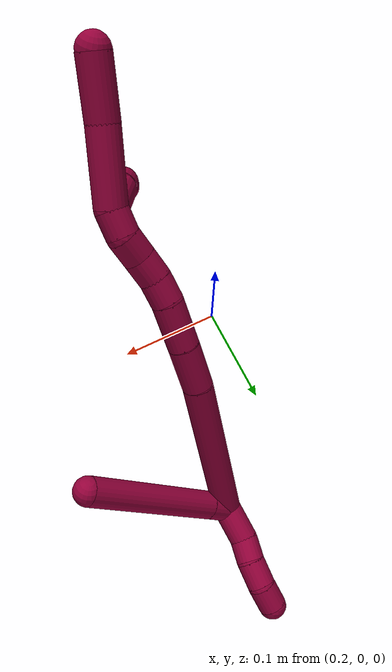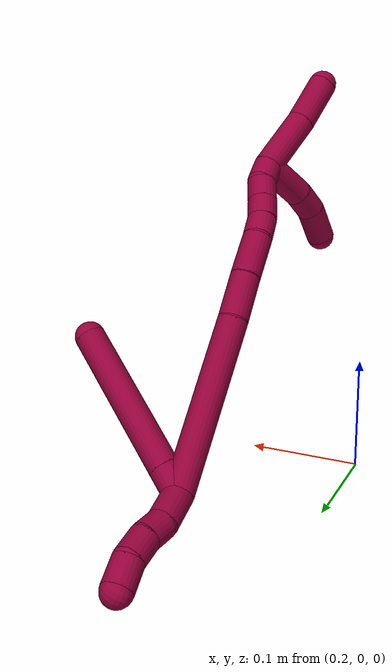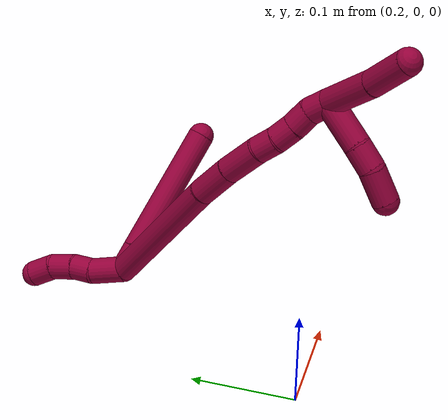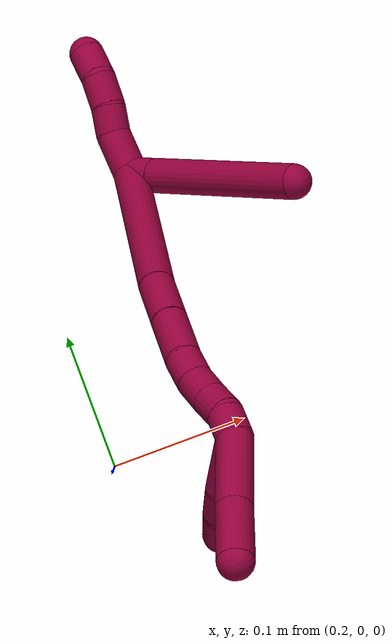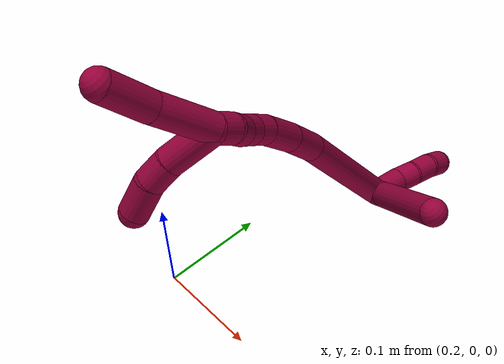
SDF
<sdf version="1.7">
 <world name="default">
  <model name="8">
   <static>0</static>
   <link name="8">
    <collision name="collision-cylinder-e_1_2_8">
     <pose>-0.009931 0.004021 -0.004603 -2.42352 -1.0191 1.9587</pose>
     <geometry><cylinder><radius>0.0125</radius><length>0.023322</length></cylinder></geometry>
     <surface>
      <friction><ode><mu>1.16</mu><mu2>1.16</mu2><slip1>0</slip1><slip2>0</slip2></ode></friction>
      <contact><ode><kp>1e+06</kp><kd>1</kd><max_vel>0</max_vel><min_depth>0.001</min_depth></ode></contact>
     </surface>
    </collision>
    <visual name="visual-cylinder-e_1_2_8">
     <pose>-0.009931 0.004021 -0.004603 -2.42352 -1.0191 1.9587</pose>
     <geometry><cylinder><radius>0.0125</radius><length>0.023322</length></cylinder></geometry>
     <material><ambient>0.584314 0 0.227451 1</ambient></material>
    </visual>
    <collision name="collision-cylinder-e_2_8_6">
     <pose>-0.074116 0.029607 -0.033768 -2.42109 -1.02857 1.96553</pose>
     <geometry><cylinder><radius>0.0125</radius><length>0.126678</length></cylinder></geometry>
     <surface>
      <friction><ode><mu>1.16</mu><mu2>1.16</mu2><slip1>0</slip1><slip2>0</slip2></ode></friction>
      <contact><ode><kp>1e+06</kp><kd>1</kd><max_vel>0</max_vel><min_depth>0.001</min_depth></ode></contact>
     </surface>
    </collision>
    <visual name="visual-cylinder-e_2_8_6">
     <pose>-0.074116 0.029607 -0.033768 -2.42109 -1.02857 1.96553</pose>
     <geometry><cylinder><radius>0.0125</radius><length>0.126678</length></cylinder></geometry>
     <material><ambient>0.584314 0 0.227451 1</ambient></material>
    </visual>
    <collision name="collision-cylinder-e_1_2_9">
     <pose>0.010117 0.01 0.008142 -0.887467 0.665239 -0.325518</pose>
     <geometry><cylinder><radius>0.0125</radius><length>0.032781</length></cylinder></geometry>
     <surface>
      <friction><ode><mu>1.16</mu><mu2>1.16</mu2><slip1>0</slip1><slip2>0</slip2></ode></friction>
      <contact><ode><kp>1e+06</kp><kd>1</kd><max_vel>0</max_vel><min_depth>0.001</min_depth></ode></contact>
     </surface>
    </collision>
    <visual name="visual-cylinder-e_1_2_9">
     <pose>0.010117 0.01 0.008142 -0.887467 0.665239 -0.325518</pose>
     <geometry><cylinder><radius>0.0125</radius><length>0.032781</length></cylinder></geometry>
     <material><ambient>0.584314 0 0.227451 1</ambient></material>
    </visual>
    <collision name="collision-cylinder-e_2_9_10">
     <pose>0.024447 0.028097 0.020827 -1.05951 0.426006 -0.251966</pose>
     <geometry><cylinder><radius>0.0125</radius><length>0.020391</length></cylinder></geometry>
     <surface>
      <friction><ode><mu>1.16</mu><mu2>1.16</mu2><slip1>0</slip1><slip2>0</slip2></ode></friction>
      <contact><ode><kp>1e+06</kp><kd>1</kd><max_vel>0</max_vel><min_depth>0.001</min_depth></ode></contact>
     </surface>
    </collision>
    <visual name="visual-cylinder-e_2_9_10">
     <pose>0.024447 0.028097 0.020827 -1.05951 0.426006 -0.251966</pose>
     <geometry><cylinder><radius>0.0125</radius><length>0.020391</length></cylinder></geometry>
     <material><ambient>0.584314 0 0.227451 1</ambient></material>
    </visual>
    <collision name="collision-cylinder-e_3_10_11">
     <pose>0.035135 0.043984 0.031372 -0.914213 0.582254 -0.29265</pose>
     <geometry><cylinder><radius>0.0125</radius><length>0.023548</length></cylinder></geometry>
     <surface>
      <friction><ode><mu>1.16</mu><mu2>1.16</mu2><slip1>0</slip1><slip2>0</slip2></ode></friction>
      <contact><ode><kp>1e+06</kp><kd>1</kd><max_vel>0</max_vel><min_depth>0.001</min_depth></ode></contact>
     </surface>
    </collision>
    <visual name="visual-cylinder-e_3_10_11">
     <pose>0.035135 0.043984 0.031372 -0.914213 0.582254 -0.29265</pose>
     <geometry><cylinder><radius>0.0125</radius><length>0.023548</length></cylinder></geometry>
     <material><ambient>0.584314 0 0.227451 1</ambient></material>
    </visual>
    <collision name="collision-cylinder-e_4_11_5">
     <pose>0.048896 0.05645 0.045154 -0.541335 0.676438 -0.19458</pose>
     <geometry><cylinder><radius>0.0125</radius><length>0.02328</length></cylinder></geometry>
     <surface>
      <friction><ode><mu>1.16</mu><mu2>1.16</mu2><slip1>0</slip1><slip2>0</slip2></ode></friction>
      <contact><ode><kp>1e+06</kp><kd>1</kd><max_vel>0</max_vel><min_depth>0.001</min_depth></ode></contact>
     </surface>
    </collision>
    <visual name="visual-cylinder-e_4_11_5">
     <pose>0.048896 0.05645 0.045154 -0.541335 0.676438 -0.19458</pose>
     <geometry><cylinder><radius>0.0125</radius><length>0.02328</length></cylinder></geometry>
     <material><ambient>0.584314 0 0.227451 1</ambient></material>
    </visual>
    <collision name="collision-cylinder-e_1_2_12">
     <pose>-0.029011 -0.006763 -0.065075 3.03804 -0.41737 -2.66161</pose>
     <geometry><cylinder><radius>0.0125</radius><length>0.143138</length></cylinder></geometry>
     <surface>
      <friction><ode><mu>1.16</mu><mu2>1.16</mu2><slip1>0</slip1><slip2>0</slip2></ode></friction>
      <contact><ode><kp>1e+06</kp><kd>1</kd><max_vel>0</max_vel><min_depth>0.001</min_depth></ode></contact>
     </surface>
    </collision>
    <visual name="visual-cylinder-e_1_2_12">
     <pose>-0.029011 -0.006763 -0.065075 3.03804 -0.41737 -2.66161</pose>
     <geometry><cylinder><radius>0.0125</radius><length>0.143138</length></cylinder></geometry>
     <material><ambient>0.584314 0 0.227451 1</ambient></material>
    </visual>
    <collision name="collision-cylinder-e_2_12_13">
     <pose>-0.067442 -0.016381 -0.14668 2.97056 -0.511686 -2.50818</pose>
     <geometry><cylinder><radius>0.0125</radius><length>0.038477</length></cylinder></geometry>
     <surface>
      <friction><ode><mu>1.16</mu><mu2>1.16</mu2><slip1>0</slip1><slip2>0</slip2></ode></friction>
      <contact><ode><kp>1e+06</kp><kd>1</kd><max_vel>0</max_vel><min_depth>0.001</min_depth></ode></contact>
     </surface>
    </collision>
    <visual name="visual-cylinder-e_2_12_13">
     <pose>-0.067442 -0.016381 -0.14668 2.97056 -0.511686 -2.50818</pose>
     <geometry><cylinder><radius>0.0125</radius><length>0.038477</length></cylinder></geometry>
     <material><ambient>0.584314 0 0.227451 1</ambient></material>
    </visual>
    <collision name="collision-cylinder-e_3_13_14">
     <pose>-0.086623 -0.023206 -0.179143 2.89737 -0.536313 -2.3015</pose>
     <geometry><cylinder><radius>0.0125</radius><length>0.038206</length></cylinder></geometry>
     <surface>
      <friction><ode><mu>1.16</mu><mu2>1.16</mu2><slip1>0</slip1><slip2>0</slip2></ode></friction>
      <contact><ode><kp>1e+06</kp><kd>1</kd><max_vel>0</max_vel><min_depth>0.001</min_depth></ode></contact>
     </surface>
    </collision>
    <visual name="visual-cylinder-e_3_13_14">
     <pose>-0.086623 -0.023206 -0.179143 2.89737 -0.536313 -2.3015</pose>
     <geometry><cylinder><radius>0.0125</radius><length>0.038206</length></cylinder></geometry>
     <material><ambient>0.584314 0 0.227451 1</ambient></material>
    </visual>
    <collision name="collision-cylinder-e_4_14_15">
     <pose>-0.10268 -0.029971 -0.202442 2.77901 -0.674251 -2.17788</pose>
     <geometry><cylinder><radius>0.0125</radius><length>0.020168</length></cylinder></geometry>
     <surface>
      <friction><ode><mu>1.16</mu><mu2>1.16</mu2><slip1>0</slip1><slip2>0</slip2></ode></friction>
      <contact><ode><kp>1e+06</kp><kd>1</kd><max_vel>0</max_vel><min_depth>0.001</min_depth></ode></contact>
     </surface>
    </collision>
    <visual name="visual-cylinder-e_4_14_15">
     <pose>-0.10268 -0.029971 -0.202442 2.77901 -0.674251 -2.17788</pose>
     <geometry><cylinder><radius>0.0125</radius><length>0.020168</length></cylinder></geometry>
     <material><ambient>0.584314 0 0.227451 1</ambient></material>
    </visual>
    <collision name="collision-cylinder-e_5_15_16">
     <pose>-0.116206 -0.034144 -0.21658 2.9407 -0.807901 -2.6785</pose>
     <geometry><cylinder><radius>0.0125</radius><length>0.020004</length></cylinder></geometry>
     <surface>
      <friction><ode><mu>1.16</mu><mu2>1.16</mu2><slip1>0</slip1><slip2>0</slip2></ode></friction>
      <contact><ode><kp>1e+06</kp><kd>1</kd><max_vel>0</max_vel><min_depth>0.001</min_depth></ode></contact>
     </surface>
    </collision>
    <visual name="visual-cylinder-e_5_15_16">
     <pose>-0.116206 -0.034144 -0.21658 2.9407 -0.807901 -2.6785</pose>
     <geometry><cylinder><radius>0.0125</radius><length>0.020004</length></cylinder></geometry>
     <material><ambient>0.584314 0 0.227451 1</ambient></material>
    </visual>
    <collision name="collision-cylinder-e_6_16_17">
     <pose>-0.130418 -0.035714 -0.230512 3.11495 -0.772652 -3.07612</pose>
     <geometry><cylinder><radius>0.0125</radius><length>0.020004</length></cylinder></geometry>
     <surface>
      <friction><ode><mu>1.16</mu><mu2>1.16</mu2><slip1>0</slip1><slip2>0</slip2></ode></friction>
      <contact><ode><kp>1e+06</kp><kd>1</kd><max_vel>0</max_vel><min_depth>0.001</min_depth></ode></contact>
     </surface>
    </collision>
    <visual name="visual-cylinder-e_6_16_17">
     <pose>-0.130418 -0.035714 -0.230512 3.11495 -0.772652 -3.07612</pose>
     <geometry><cylinder><radius>0.0125</radius><length>0.020004</length></cylinder></geometry>
     <material><ambient>0.584314 0 0.227451 1</ambient></material>
    </visual>
    <collision name="collision-cylinder-e_7_17_1">
     <pose>-0.143085 -0.039299 -0.245167 2.71634 -0.604681 -1.93069</pose>
     <geometry><cylinder><radius>0.0125</radius><length>0.020002</length></cylinder></geometry>
     <surface>
      <friction><ode><mu>1.16</mu><mu2>1.16</mu2><slip1>0</slip1><slip2>0</slip2></ode></friction>
      <contact><ode><kp>1e+06</kp><kd>1</kd><max_vel>0</max_vel><min_depth>0.001</min_depth></ode></contact>
     </surface>
    </collision>
    <visual name="visual-cylinder-e_7_17_1">
     <pose>-0.143085 -0.039299 -0.245167 2.71634 -0.604681 -1.93069</pose>
     <geometry><cylinder><radius>0.0125</radius><length>0.020002</length></cylinder></geometry>
     <material><ambient>0.584314 0 0.227451 1</ambient></material>
    </visual>
    <collision name="collision-cylinder-e_1_1_18">
     <pose>-0.156271 -0.052885 -0.277462 2.75168 -0.272773 -1.21473</pose>
     <geometry><cylinder><radius>0.0125</radius><length>0.055685</length></cylinder></geometry>
     <surface>
      <friction><ode><mu>1.16</mu><mu2>1.16</mu2><slip1>0</slip1><slip2>0</slip2></ode></friction>
      <contact><ode><kp>1e+06</kp><kd>1</kd><max_vel>0</max_vel><min_depth>0.001</min_depth></ode></contact>
     </surface>
    </collision>
    <visual name="visual-cylinder-e_1_1_18">
     <pose>-0.156271 -0.052885 -0.277462 2.75168 -0.272773 -1.21473</pose>
     <geometry><cylinder><radius>0.0125</radius><length>0.055685</length></cylinder></geometry>
     <material><ambient>0.584314 0 0.227451 1</ambient></material>
    </visual>
    <collision name="collision-cylinder-e_2_18_4">
     <pose>-0.170333 -0.069154 -0.322535 2.85038 -0.300601 -1.60298</pose>
     <geometry><cylinder><radius>0.0125</radius><length>0.044315</length></cylinder></geometry>
     <surface>
      <friction><ode><mu>1.16</mu><mu2>1.16</mu2><slip1>0</slip1><slip2>0</slip2></ode></friction>
      <contact><ode><kp>1e+06</kp><kd>1</kd><max_vel>0</max_vel><min_depth>0.001</min_depth></ode></contact>
     </surface>
    </collision>
    <visual name="visual-cylinder-e_2_18_4">
     <pose>-0.170333 -0.069154 -0.322535 2.85038 -0.300601 -1.60298</pose>
     <geometry><cylinder><radius>0.0125</radius><length>0.044315</length></cylinder></geometry>
     <material><ambient>0.584314 0 0.227451 1</ambient></material>
    </visual>
    <collision name="collision-cylinder-e_1_1_19">
     <pose>-0.147019 -0.064651 -0.249226 1.41559 0.078635 0.067298</pose>
     <geometry><cylinder><radius>0.0125</radius><length>0.044586</length></cylinder></geometry>
     <surface>
      <friction><ode><mu>1.16</mu><mu2>1.16</mu2><slip1>0</slip1><slip2>0</slip2></ode></friction>
      <contact><ode><kp>1e+06</kp><kd>1</kd><max_vel>0</max_vel><min_depth>0.001</min_depth></ode></contact>
     </surface>
    </collision>
    <visual name="visual-cylinder-e_1_1_19">
     <pose>-0.147019 -0.064651 -0.249226 1.41559 0.078635 0.067298</pose>
     <geometry><cylinder><radius>0.0125</radius><length>0.044586</length></cylinder></geometry>
     <material><ambient>0.584314 0 0.227451 1</ambient></material>
    </visual>
    <collision name="collision-cylinder-e_2_19_20">
     <pose>-0.144893 -0.09788 -0.242347 1.27434 0.031834 0.023563</pose>
     <geometry><cylinder><radius>0.0125</radius><length>0.023584</length></cylinder></geometry>
     <surface>
      <friction><ode><mu>1.16</mu><mu2>1.16</mu2><slip1>0</slip1><slip2>0</slip2></ode></friction>
      <contact><ode><kp>1e+06</kp><kd>1</kd><max_vel>0</max_vel><min_depth>0.001</min_depth></ode></contact>
     </surface>
    </collision>
    <visual name="visual-cylinder-e_2_19_20">
     <pose>-0.144893 -0.09788 -0.242347 1.27434 0.031834 0.023563</pose>
     <geometry><cylinder><radius>0.0125</radius><length>0.023584</length></cylinder></geometry>
     <material><ambient>0.584314 0 0.227451 1</ambient></material>
    </visual>
    <collision name="collision-cylinder-e_3_20_3">
     <pose>-0.14378 -0.122597 -0.230421 1.00794 0.046367 0.025573</pose>
     <geometry><cylinder><radius>0.0125</radius><length>0.03183</length></cylinder></geometry>
     <surface>
      <friction><ode><mu>1.16</mu><mu2>1.16</mu2><slip1>0</slip1><slip2>0</slip2></ode></friction>
      <contact><ode><kp>1e+06</kp><kd>1</kd><max_vel>0</max_vel><min_depth>0.001</min_depth></ode></contact>
     </surface>
    </collision>
    <visual name="visual-cylinder-e_3_20_3">
     <pose>-0.14378 -0.122597 -0.230421 1.00794 0.046367 0.025573</pose>
     <geometry><cylinder><radius>0.0125</radius><length>0.03183</length></cylinder></geometry>
     <material><ambient>0.584314 0 0.227451 1</ambient></material>
    </visual>
    <collision name="collision-sphere-3">
     <pose>-0.143042 -0.136042 -0.221938 0 -0 0</pose>
     <geometry><sphere><radius>0.0125</radius></sphere></geometry>
     <surface>
      <friction><ode><mu>1.16</mu><mu2>1.16</mu2><slip1>0</slip1><slip2>0</slip2></ode></friction>
      <contact><ode><kp>1e+06</kp><kd>1</kd><max_vel>0</max_vel><min_depth>0.001</min_depth></ode></contact>
     </surface>
    </collision>
    <visual name="visual-sphere-3">
     <pose>-0.143042 -0.136042 -0.221938 0 -0 0</pose>
     <geometry><sphere><radius>0.0125</radius></sphere></geometry>
     <material><ambient>0.584314 0 0.227451 1</ambient></material>
    </visual>
    <collision name="collision-sphere-20">
     <pose>-0.144517 -0.109151 -0.238904 0 -0 0</pose>
     <geometry><sphere><radius>0.0125</radius></sphere></geometry>
     <surface>
      <friction><ode><mu>1.16</mu><mu2>1.16</mu2><slip1>0</slip1><slip2>0</slip2></ode></friction>
      <contact><ode><kp>1e+06</kp><kd>1</kd><max_vel>0</max_vel><min_depth>0.001</min_depth></ode></contact>
     </surface>
    </collision>
    <visual name="visual-sphere-20">
     <pose>-0.144517 -0.109151 -0.238904 0 -0 0</pose>
     <geometry><sphere><radius>0.0125</radius></sphere></geometry>
     <material><ambient>0.584314 0 0.227451 1</ambient></material>
    </visual>
    <collision name="collision-sphere-19">
     <pose>-0.145268 -0.086608 -0.24579 0 -0 0</pose>
     <geometry><sphere><radius>0.0125</radius></sphere></geometry>
     <surface>
      <friction><ode><mu>1.16</mu><mu2>1.16</mu2><slip1>0</slip1><slip2>0</slip2></ode></friction>
      <contact><ode><kp>1e+06</kp><kd>1</kd><max_vel>0</max_vel><min_depth>0.001</min_depth></ode></contact>
     </surface>
    </collision>
    <visual name="visual-sphere-19">
     <pose>-0.145268 -0.086608 -0.24579 0 -0 0</pose>
     <geometry><sphere><radius>0.0125</radius></sphere></geometry>
     <material><ambient>0.584314 0 0.227451 1</ambient></material>
    </visual>
    <collision name="collision-sphere-11">
     <pose>0.041609 0.051773 0.037375 0 -0 0</pose>
     <geometry><sphere><radius>0.0125</radius></sphere></geometry>
     <surface>
      <friction><ode><mu>1.16</mu><mu2>1.16</mu2><slip1>0</slip1><slip2>0</slip2></ode></friction>
      <contact><ode><kp>1e+06</kp><kd>1</kd><max_vel>0</max_vel><min_depth>0.001</min_depth></ode></contact>
     </surface>
    </collision>
    <visual name="visual-sphere-11">
     <pose>0.041609 0.051773 0.037375 0 -0 0</pose>
     <geometry><sphere><radius>0.0125</radius></sphere></geometry>
     <material><ambient>0.584314 0 0.227451 1</ambient></material>
    </visual>
    <collision name="collision-sphere-10">
     <pose>0.02866 0.036194 0.025369 0 -0 0</pose>
     <geometry><sphere><radius>0.0125</radius></sphere></geometry>
     <surface>
      <friction><ode><mu>1.16</mu><mu2>1.16</mu2><slip1>0</slip1><slip2>0</slip2></ode></friction>
      <contact><ode><kp>1e+06</kp><kd>1</kd><max_vel>0</max_vel><min_depth>0.001</min_depth></ode></contact>
     </surface>
    </collision>
    <visual name="visual-sphere-10">
     <pose>0.02866 0.036194 0.025369 0 -0 0</pose>
     <geometry><sphere><radius>0.0125</radius></sphere></geometry>
     <material><ambient>0.584314 0 0.227451 1</ambient></material>
    </visual>
    <collision name="collision-sphere-6">
     <pose>-0.128369 0.051172 -0.058331 0 -0 0</pose>
     <geometry><sphere><radius>0.0125</radius></sphere></geometry>
     <surface>
      <friction><ode><mu>1.16</mu><mu2>1.16</mu2><slip1>0</slip1><slip2>0</slip2></ode></friction>
      <contact><ode><kp>1e+06</kp><kd>1</kd><max_vel>0</max_vel><min_depth>0.001</min_depth></ode></contact>
     </surface>
    </collision>
    <visual name="visual-sphere-6">
     <pose>-0.128369 0.051172 -0.058331 0 -0 0</pose>
     <geometry><sphere><radius>0.0125</radius></sphere></geometry>
     <material><ambient>0.584314 0 0.227451 1</ambient></material>
    </visual>
    <collision name="collision-sphere-9">
     <pose>0.020234 0.02 0.016284 0 -0 0</pose>
     <geometry><sphere><radius>0.0125</radius></sphere></geometry>
     <surface>
      <friction><ode><mu>1.16</mu><mu2>1.16</mu2><slip1>0</slip1><slip2>0</slip2></ode></friction>
      <contact><ode><kp>1e+06</kp><kd>1</kd><max_vel>0</max_vel><min_depth>0.001</min_depth></ode></contact>
     </surface>
    </collision>
    <visual name="visual-sphere-9">
     <pose>0.020234 0.02 0.016284 0 -0 0</pose>
     <geometry><sphere><radius>0.0125</radius></sphere></geometry>
     <material><ambient>0.584314 0 0.227451 1</ambient></material>
    </visual>
    <collision name="collision-sphere-2">
     <geometry><sphere><radius>0.0125</radius></sphere></geometry>
     <surface>
      <friction><ode><mu>1.16</mu><mu2>1.16</mu2><slip1>0</slip1><slip2>0</slip2></ode></friction>
      <contact><ode><kp>1e+06</kp><kd>1</kd><max_vel>0</max_vel><min_depth>0.001</min_depth></ode></contact>
     </surface>
    </collision>
    <visual name="visual-sphere-2">
     <geometry><sphere><radius>0.0125</radius></sphere></geometry>
     <material><ambient>0.584314 0 0.227451 1</ambient></material>
    </visual>
    <collision name="collision-sphere-8">
     <pose>-0.019862 0.008042 -0.009206 0 -0 0</pose>
     <geometry><sphere><radius>0.0125</radius></sphere></geometry>
     <surface>
      <friction><ode><mu>1.16</mu><mu2>1.16</mu2><slip1>0</slip1><slip2>0</slip2></ode></friction>
      <contact><ode><kp>1e+06</kp><kd>1</kd><max_vel>0</max_vel><min_depth>0.001</min_depth></ode></contact>
     </surface>
    </collision>
    <visual name="visual-sphere-8">
     <pose>-0.019862 0.008042 -0.009206 0 -0 0</pose>
     <geometry><sphere><radius>0.0125</radius></sphere></geometry>
     <material><ambient>0.584314 0 0.227451 1</ambient></material>
    </visual>
    <collision name="collision-sphere-5">
     <pose>0.056183 0.061127 0.052933 0 -0 0</pose>
     <geometry><sphere><radius>0.0125</radius></sphere></geometry>
     <surface>
      <friction><ode><mu>1.16</mu><mu2>1.16</mu2><slip1>0</slip1><slip2>0</slip2></ode></friction>
      <contact><ode><kp>1e+06</kp><kd>1</kd><max_vel>0</max_vel><min_depth>0.001</min_depth></ode></contact>
     </surface>
    </collision>
    <visual name="visual-sphere-5">
     <pose>0.056183 0.061127 0.052933 0 -0 0</pose>
     <geometry><sphere><radius>0.0125</radius></sphere></geometry>
     <material><ambient>0.584314 0 0.227451 1</ambient></material>
    </visual>
    <collision name="collision-sphere-12">
     <pose>-0.058022 -0.013525 -0.13015 0 -0 0</pose>
     <geometry><sphere><radius>0.0125</radius></sphere></geometry>
     <surface>
      <friction><ode><mu>1.16</mu><mu2>1.16</mu2><slip1>0</slip1><slip2>0</slip2></ode></friction>
      <contact><ode><kp>1e+06</kp><kd>1</kd><max_vel>0</max_vel><min_depth>0.001</min_depth></ode></contact>
     </surface>
    </collision>
    <visual name="visual-sphere-12">
     <pose>-0.058022 -0.013525 -0.13015 0 -0 0</pose>
     <geometry><sphere><radius>0.0125</radius></sphere></geometry>
     <material><ambient>0.584314 0 0.227451 1</ambient></material>
    </visual>
    <collision name="collision-sphere-13">
     <pose>-0.076862 -0.019236 -0.163209 0 -0 0</pose>
     <geometry><sphere><radius>0.0125</radius></sphere></geometry>
     <surface>
      <friction><ode><mu>1.16</mu><mu2>1.16</mu2><slip1>0</slip1><slip2>0</slip2></ode></friction>
      <contact><ode><kp>1e+06</kp><kd>1</kd><max_vel>0</max_vel><min_depth>0.001</min_depth></ode></contact>
     </surface>
    </collision>
    <visual name="visual-sphere-13">
     <pose>-0.076862 -0.019236 -0.163209 0 -0 0</pose>
     <geometry><sphere><radius>0.0125</radius></sphere></geometry>
     <material><ambient>0.584314 0 0.227451 1</ambient></material>
    </visual>
    <collision name="collision-sphere-14">
     <pose>-0.096385 -0.027177 -0.195077 0 -0 0</pose>
     <geometry><sphere><radius>0.0125</radius></sphere></geometry>
     <surface>
      <friction><ode><mu>1.16</mu><mu2>1.16</mu2><slip1>0</slip1><slip2>0</slip2></ode></friction>
      <contact><ode><kp>1e+06</kp><kd>1</kd><max_vel>0</max_vel><min_depth>0.001</min_depth></ode></contact>
     </surface>
    </collision>
    <visual name="visual-sphere-14">
     <pose>-0.096385 -0.027177 -0.195077 0 -0 0</pose>
     <geometry><sphere><radius>0.0125</radius></sphere></geometry>
     <material><ambient>0.584314 0 0.227451 1</ambient></material>
    </visual>
    <collision name="collision-sphere-15">
     <pose>-0.108976 -0.032765 -0.209807 0 -0 0</pose>
     <geometry><sphere><radius>0.0125</radius></sphere></geometry>
     <surface>
      <friction><ode><mu>1.16</mu><mu2>1.16</mu2><slip1>0</slip1><slip2>0</slip2></ode></friction>
      <contact><ode><kp>1e+06</kp><kd>1</kd><max_vel>0</max_vel><min_depth>0.001</min_depth></ode></contact>
     </surface>
    </collision>
    <visual name="visual-sphere-15">
     <pose>-0.108976 -0.032765 -0.209807 0 -0 0</pose>
     <geometry><sphere><radius>0.0125</radius></sphere></geometry>
     <material><ambient>0.584314 0 0.227451 1</ambient></material>
    </visual>
    <collision name="collision-sphere-16">
     <pose>-0.123436 -0.035523 -0.223353 0 -0 0</pose>
     <geometry><sphere><radius>0.0125</radius></sphere></geometry>
     <surface>
      <friction><ode><mu>1.16</mu><mu2>1.16</mu2><slip1>0</slip1><slip2>0</slip2></ode></friction>
      <contact><ode><kp>1e+06</kp><kd>1</kd><max_vel>0</max_vel><min_depth>0.001</min_depth></ode></contact>
     </surface>
    </collision>
    <visual name="visual-sphere-16">
     <pose>-0.123436 -0.035523 -0.223353 0 -0 0</pose>
     <geometry><sphere><radius>0.0125</radius></sphere></geometry>
     <material><ambient>0.584314 0 0.227451 1</ambient></material>
    </visual>
    <collision name="collision-sphere-17">
     <pose>-0.137399 -0.035905 -0.237672 0 -0 0</pose>
     <geometry><sphere><radius>0.0125</radius></sphere></geometry>
     <surface>
      <friction><ode><mu>1.16</mu><mu2>1.16</mu2><slip1>0</slip1><slip2>0</slip2></ode></friction>
      <contact><ode><kp>1e+06</kp><kd>1</kd><max_vel>0</max_vel><min_depth>0.001</min_depth></ode></contact>
     </surface>
    </collision>
    <visual name="visual-sphere-17">
     <pose>-0.137399 -0.035905 -0.237672 0 -0 0</pose>
     <geometry><sphere><radius>0.0125</radius></sphere></geometry>
     <material><ambient>0.584314 0 0.227451 1</ambient></material>
    </visual>
    <collision name="collision-sphere-1">
     <pose>-0.148771 -0.042693 -0.252661 0 -0 0</pose>
     <geometry><sphere><radius>0.0125</radius></sphere></geometry>
     <surface>
      <friction><ode><mu>1.16</mu><mu2>1.16</mu2><slip1>0</slip1><slip2>0</slip2></ode></friction>
      <contact><ode><kp>1e+06</kp><kd>1</kd><max_vel>0</max_vel><min_depth>0.001</min_depth></ode></contact>
     </surface>
    </collision>
    <visual name="visual-sphere-1">
     <pose>-0.148771 -0.042693 -0.252661 0 -0 0</pose>
     <geometry><sphere><radius>0.0125</radius></sphere></geometry>
     <material><ambient>0.584314 0 0.227451 1</ambient></material>
    </visual>
    <collision name="collision-sphere-18">
     <pose>-0.163772 -0.063077 -0.302262 0 -0 0</pose>
     <geometry><sphere><radius>0.0125</radius></sphere></geometry>
     <surface>
      <friction><ode><mu>1.16</mu><mu2>1.16</mu2><slip1>0</slip1><slip2>0</slip2></ode></friction>
      <contact><ode><kp>1e+06</kp><kd>1</kd><max_vel>0</max_vel><min_depth>0.001</min_depth></ode></contact>
     </surface>
    </collision>
    <visual name="visual-sphere-18">
     <pose>-0.163772 -0.063077 -0.302262 0 -0 0</pose>
     <geometry><sphere><radius>0.0125</radius></sphere></geometry>
     <material><ambient>0.584314 0 0.227451 1</ambient></material>
    </visual>
    <collision name="collision-sphere-4">
     <pose>-0.176894 -0.07523 -0.342808 0 -0 0</pose>
     <geometry><sphere><radius>0.0125</radius></sphere></geometry>
     <surface>
      <friction><ode><mu>1.16</mu><mu2>1.16</mu2><slip1>0</slip1><slip2>0</slip2></ode></friction>
      <contact><ode><kp>1e+06</kp><kd>1</kd><max_vel>0</max_vel><min_depth>0.001</min_depth></ode></contact>
     </surface>
    </collision>
    <visual name="visual-sphere-4">
     <pose>-0.176894 -0.07523 -0.342808 0 -0 0</pose>
     <geometry><sphere><radius>0.0125</radius></sphere></geometry>
     <material><ambient>0.584314 0 0.227451 1</ambient></material>
    </visual>
    <inertial>
     <pose>-0.076729 -0.017707 -0.12739 0 -0 0</pose>
     <mass>0.75</mass>
     <inertia>
      <ixx>-0.000296</ixx>
      <ixy>0</ixy>
      <ixz>0</ixz>
      <iyy>0.000331</iyy>
      <iyz>0</iyz>
      <izz>0.000222</izz>
     </inertia>
    </inertial>
   </link>
   <pose>0.285114 0.194012 0.043926 2.64825 0.184604 2.5591</pose>
  </model>
 </world>
</sdf>
